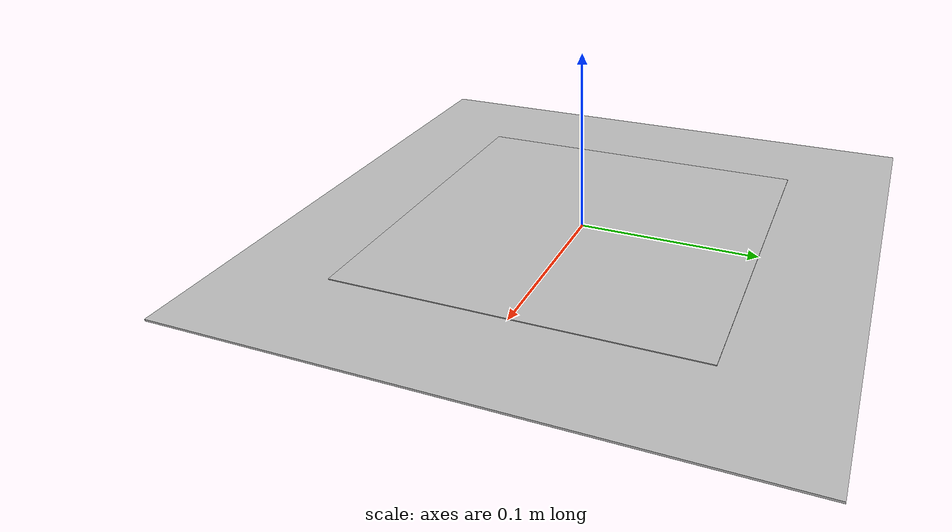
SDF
<?xml version="1.0" ?>
<sdf version="1.4">
  <model name="marker_0">
    <static>true</static>
    <link name="marker">
      <gravity>false</gravity>
      <visual name="tag">
        <geometry>
          <box>
            <size>0.20 0.20 0.002</size>
          </box>
        </geometry>
        <material>
          <script>
            <uri>model://marker_0/material/scripts</uri>
            <uri>model://marker_0/material/textures</uri>
            <name>marker_0</name>
          </script>
        </material>
      </visual>
      <visual name="support">
        <geometry>
          <box>
            <size>0.32 0.32 0.001</size>
          </box>
        </geometry>
        <material>Gazebo/White</material>
      </visual>

      <collision name="collision">
        <geometry>
          <box>
            <size>0.32 0.32 0.001</size>
          </box>
        </geometry>
      </collision>
    </link>
  </model>
</sdf>
